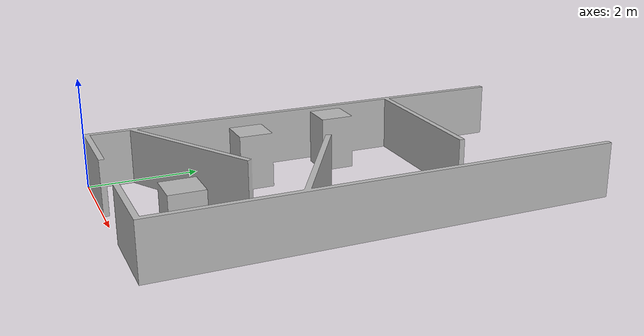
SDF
<?xml version="1.0"?>
<sdf version="1.6">
    <model name="project3">
        <static>true</static>
        <link name="link">
            <pose>0 0 0 0 0 0</pose>
            <visual name="visual">
                <geometry>
                    <mesh>
                        <uri>model://project3/meshes/map-project3-phase2.STL</uri>
                        <scale>0.002 0.002 0.002</scale>
                    </mesh>
                </geometry>
            </visual>
            <collision name="collision">
                <geometry>
                    <mesh>
                        <uri>model://project3/meshes/map-project3-phase2.STL</uri>
                        <scale>0.002 0.002 0.002</scale>
                    </mesh>
                </geometry>
            </collision>
            <inertial>
                <mass>1.0</mass>
                <inertia>
                    <ixx>0.01</ixx>
                    <iyy>0.01</iyy>
                    <izz>0.01</izz>
                    <ixy>0.0</ixy>
                    <ixz>0.0</ixz>
                    <iyz>0.0</iyz>
                </inertia>
            </inertial>
        </link>
    </model>
</sdf>
